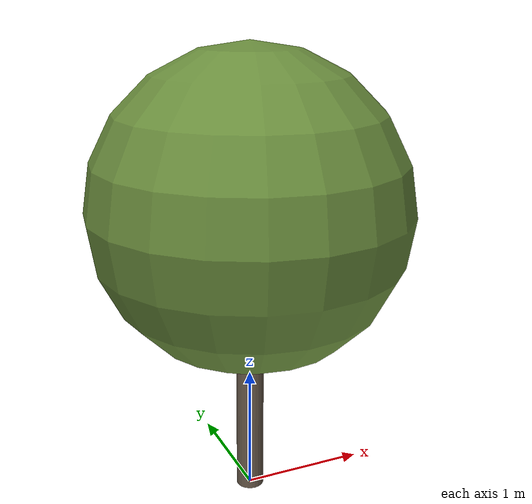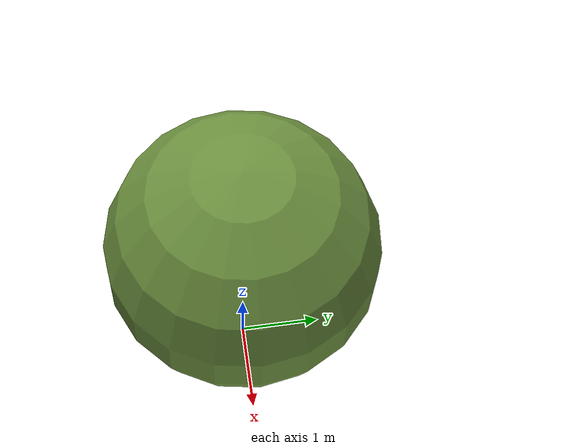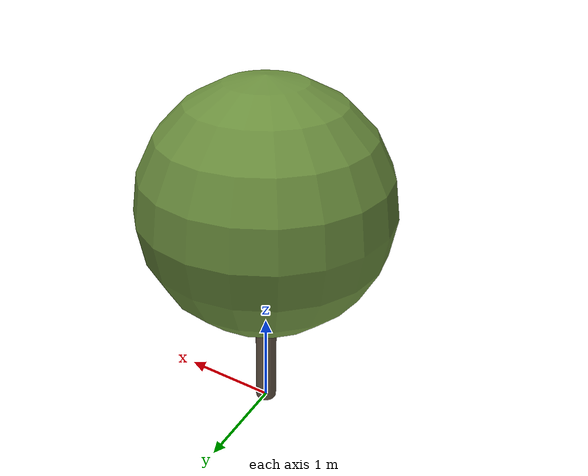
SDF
<?xml version="1.0" ?>
<sdf version="1.10">
  <model name="olivier_provence_05">
    <static>true</static>

    <!-- Tronc -->
    <link name="trunk">
      <pose>0 0 0.9872630897619072 0 0 0</pose>
      <visual name="trunk_visual">
        <geometry>
          <cylinder>
            <radius>0.10873957144020156</radius>
            <length>1.9745261795238145</length>
          </cylinder>
        </geometry>
        <material>
          <ambient>0.42 0.36 0.30 1</ambient>
          <diffuse>0.42 0.36 0.30 1</diffuse>
          <specular>0.1 0.1 0.1 1</specular>
        </material>
      </visual>
      <collision name="trunk_collision">
        <geometry>
          <cylinder>
            <radius>0.10873957144020156</radius>
            <length>1.9745261795238145</length>
          </cylinder>
        </geometry>
      </collision>
    </link>

    <!-- Feuillage -->
    <link name="crown">
      <pose>0 0 2.3439495319849892 0 0 0</pose>
      <visual name="crown_visual">
        <geometry>
          <sphere>
              <radius>1.2314111748705825</radius>
            </sphere>
        </geometry>
        <material>
          <ambient>0.42 0.56 0.24 1</ambient>
          <diffuse>0.42 0.56 0.24 1</diffuse>
          <specular>0.1 0.1 0.1 1</specular>
        </material>
      </visual>
      <collision name="crown_collision">
        <geometry>
          <sphere>
            <radius>0.985128939896466</radius>
          </sphere>
        </geometry>
      </collision>
    </link>

    <!-- Joint tronc-feuillage -->
    <joint name="trunk_crown_joint" type="fixed">
      <parent>trunk</parent>
      <child>crown</child>
    </joint>

  </model>
</sdf>
